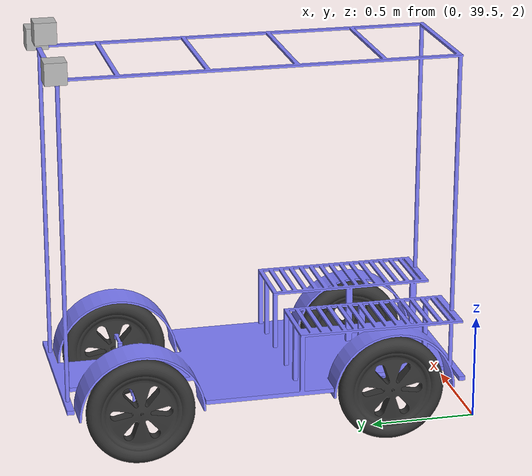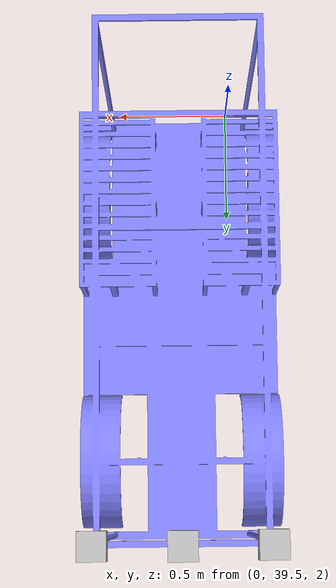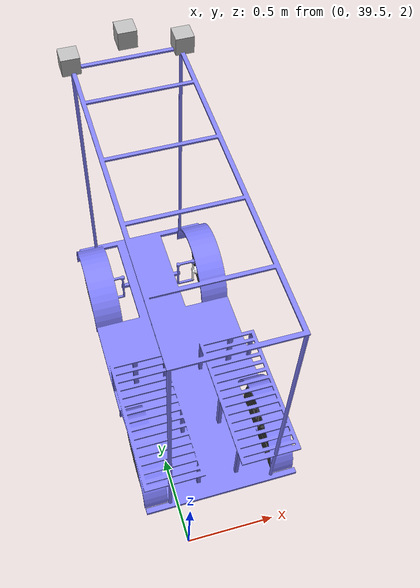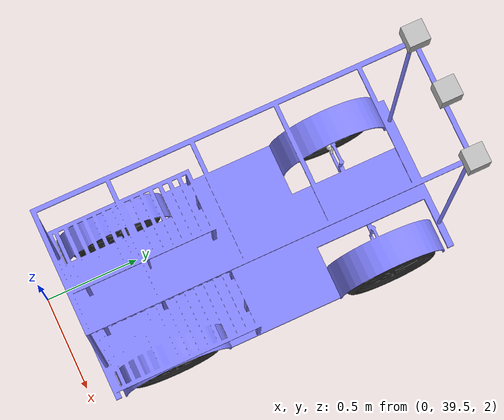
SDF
<sdf version="1.6">
 <world name="ackermann_steering">
  <physics name="1ms" type="ignored">
   <max_step_size>0.001</max_step_size>
   <real_time_factor>1.0</real_time_factor>
  </physics>
  <plugin filename="ignition-gazebo-physics-system" name="gz::sim::systems::Physics"/>
  <plugin filename="ignition-gazebo-sensors-system" name="gz::sim::systems::Sensors">
   <render_engine>ogre</render_engine>
  </plugin>
  <plugin filename="ignition-gazebo-air-pressure-system" name="gz::sim::systems::AirPressure"/>
  <plugin filename="ignition-gazebo-altimeter-system" name="gz::sim::systems::Altimeter"/>
  <plugin filename="ignition-gazebo-imu-system" name="gz::sim::systems::Imu"/>
  <plugin filename="ignition-gazebo-magnetometer-system" name="gz::sim::systems::Magnetometer"/>
  <plugin filename="ignition-gazebo-forcetorque-system" name="ignition::gazebo::systems::ForceTorque"/>
  <plugin filename="ignition-gazebo-user-commands-system" name="gz::sim::systems::UserCommands"/>
  <plugin filename="ignition-gazebo-scene-broadcaster-system" name="gz::sim::systems::SceneBroadcaster"/>
  <light type="directional" name="sun">
   <pose>0 0 5 0 0 0</pose>
   <diffuse>1 1 1 1</diffuse>
   <specular>0.5 0.5 0.5 1</specular>
   <attenuation>
    <range>1000</range>
    <constant>0.9</constant>
    <linear>0.01</linear>
    <quadratic>0.001</quadratic>
   </attenuation>
   <direction>-0.5 0.1 -0.9</direction>
  </light>
  <model name="automama">
   <pose>0 40 2 0 0 -1.57</pose>
   <link name="chassis">
    <inertial>
     <pose>-0.5 0.3 0.3 0 0 0</pose>
     <mass>300</mass>
     <inertia><ixx>0.5</ixx><ixy>0</ixy><ixz>0</ixz><iyy>0.5</iyy><iyz>0</iyz><izz>0.5</izz></inertia>
    </inertial>
    <visual name="visual">
     <geometry><mesh><scale>.01 .01 .01</scale><uri>base_link.stl</uri></mesh></geometry>
     <material>
      <ambient>0.5 0.5 1.0 1</ambient>
      <diffuse>0.5 0.5 1.0 1</diffuse>
      <specular>0.0 0.0 1.0 1</specular>
     </material>
    </visual>
    <collision name="collision">
     <geometry><mesh><scale>.01 .01 .01</scale><uri>base_link.stl</uri></mesh></geometry>
    </collision>
   </link>
   <link name="Camera1">
    <pose>-1.47 0.525 1.85 0 0 3.14</pose>
    <inertial>
     <mass>0.1</mass>
     <inertia><ixx>0.000166667</ixx><iyy>0.000166667</iyy><izz>0.000166667</izz></inertia>
    </inertial>
    <collision name="collision"><geometry><box><size>0.1 0.1 0.1</size></box></geometry></collision>
    <visual name="visual"><geometry><box><size>0.1 0.1 0.1</size></box></geometry></visual>
    <sensor name="camera1" type="camera">
     <camera>
      <horizontal_fov>1.047</horizontal_fov>
      <image><width>640</width><height>480</height></image>
      <clip><near>0.1</near><far>100</far></clip>
     </camera>
     <always_on>1</always_on>
     <update_rate>30</update_rate>
     <visualize>true</visualize>
     <topic>camera1</topic>
    </sensor>
   </link>
   <joint name="Camera1_joint" type="fixed">
    <parent>chassis</parent>
    <child>Camera1</child>
    <pose>-1.47 0.525 1.85 0 0 0</pose>
   </joint>
   <link name="Camera2">
    <pose>-1.47 -0.075 1.85 0 0 3.14</pose>
    <inertial>
     <mass>0.1</mass>
     <inertia><ixx>0.000166667</ixx><iyy>0.000166667</iyy><izz>0.000166667</izz></inertia>
    </inertial>
    <collision name="collision"><geometry><box><size>0.1 0.1 0.1</size></box></geometry></collision>
    <visual name="visual"><geometry><box><size>0.1 0.1 0.1</size></box></geometry></visual>
    <sensor name="camera2" type="camera">
     <camera>
      <horizontal_fov>1.047</horizontal_fov>
      <image><width>640</width><height>480</height></image>
      <clip><near>0.1</near><far>100</far></clip>
     </camera>
     <always_on>1</always_on>
     <update_rate>30</update_rate>
     <visualize>true</visualize>
     <topic>camera2</topic>
    </sensor>
   </link>
   <joint name="Camera2_joint" type="fixed">
    <parent>chassis</parent>
    <child>Camera2</child>
    <pose>-1.47 -0.075 1.85 0 0 0</pose>
   </joint>
   <link name="sensor_box">
    <pose>-1.47 0.225 1.95 0 0 0</pose>
    <inertial>
     <mass>0.1</mass>
     <inertia><ixx>0.000166667</ixx><iyy>0.000166667</iyy><izz>0.000166667</izz></inertia>
    </inertial>
    <collision name="sensor_box_collision"><geometry><box><size>0.1 0.1 0.1</size></box></geometry></collision>
    <visual name="sensor_box_visual"><geometry><box><size>0.1 0.1 0.1</size></box></geometry></visual>
    <sensor name="altimeter" type="altimeter">
     <always_on>1</always_on>
     <update_rate>30</update_rate>
     <visualize>true</visualize>
     <topic>altimeter</topic>
     <enable_metrics>true</enable_metrics>
     <altimeter>
      <vertical_position><noise type="gaussian"><mean>0.1</mean><stddev>0.2</stddev></noise></vertical_position>
      <vertical_velocity><noise type="gaussian"><mean>0.2</mean><stddev>0.1</stddev></noise></vertical_velocity>
     </altimeter>
    </sensor>
    <sensor name="air_pressure" type="air_pressure">
     <always_on>1</always_on>
     <update_rate>30</update_rate>
     <visualize>true</visualize>
     <topic>air_pressure</topic>
     <enable_metrics>true</enable_metrics>
     <air_pressure>
      <reference_altitude>123</reference_altitude>
      <pressure><noise type="gaussian"><mean>0.2</mean><stddev>0.1</stddev></noise></pressure>
     </air_pressure>
    </sensor>
    <sensor name="imu" type="imu">
     <always_on>1</always_on>
     <update_rate>100</update_rate>
     <visualize>true</visualize>
     <topic>imu</topic>
     <enable_metrics>true</enable_metrics>
    </sensor>
    <sensor name="magnetometer" type="magnetometer">
     <always_on>1</always_on>
     <update_rate>100</update_rate>
     <visualize>true</visualize>
     <topic>magnetometer</topic>
     <enable_metrics>true</enable_metrics>
     <magnetometer>
      <x><noise type="gaussian"><mean>0.0</mean><stddev>0.1</stddev></noise></x>
      <y><noise type="gaussian"><mean>0.0</mean><stddev>0.1</stddev></noise></y>
      <z><noise type="gaussian"><mean>0.0</mean><stddev>0.1</stddev></noise></z>
     </magnetometer>
    </sensor>
   </link>
   <joint name="sensor_box_joint" type="fixed">
    <parent>chassis</parent>
    <child>sensor_box</child>
    <pose>-1.47 0.225 1.95 0 0 0</pose>
   </joint>
   <link name="front_left_wheel">
    <inertial>
     <pose>-1.13 -0.15 0.25 0 0 0</pose>
     <mass>20</mass>
     <inertia><ixx>1</ixx><ixy>0</ixy><ixz>0</ixz><iyy>1</iyy><iyz>0</iyz><izz>1</izz></inertia>
    </inertial>
    <visual name="visual">
     <geometry><mesh><scale>.01 .01 .01</scale><uri>wheel1_1.stl</uri></mesh></geometry>
     <material>
      <ambient>0.2 0.2 0.2 1</ambient>
      <diffuse>0.2 0.2 0.2 1</diffuse>
      <specular>0.2 0.2 0.2 1</specular>
     </material>
    </visual>
    <collision name="collision">
     <geometry><mesh><scale>.01 .01 .01</scale><uri>wheel1_1.stl</uri></mesh></geometry>
     <surface><friction><ode><mu>0.5</mu><mu2>1.0</mu2><fdir1>0 0 1</fdir1></ode></friction></surface>
    </collision>
   </link>
   <link name="rear_left_wheel">
    <inertial>
     <pose>0.045 -0.15 .25 0 0 0</pose>
     <mass>20</mass>
     <inertia><ixx>1</ixx><ixy>0</ixy><ixz>0</ixz><iyy>1</iyy><iyz>0</iyz><izz>1</izz></inertia>
    </inertial>
    <visual name="visual">
     <geometry><mesh><scale>.01 .01 .01</scale><uri>wheel3_1.stl</uri></mesh></geometry>
     <material>
      <ambient>0.2 0.2 0.2 1</ambient>
      <diffuse>0.2 0.2 0.2 1</diffuse>
      <specular>0.2 0.2 0.2 1</specular>
     </material>
    </visual>
    <collision name="collision">
     <geometry><mesh><scale>.01 .01 .01</scale><uri>wheel3_1.stl</uri></mesh></geometry>
     <surface><friction><ode><mu>0.5</mu><mu2>1.0</mu2><fdir1>0 0 1</fdir1></ode></friction></surface>
    </collision>
   </link>
   <link name="front_right_wheel">
    <inertial>
     <pose>-1.13 0.6 0.25 0 0 0</pose>
     <mass>20</mass>
     <inertia><ixx>1</ixx><ixy>0</ixy><ixz>0</ixz><iyy>1</iyy><iyz>0</iyz><izz>1</izz></inertia>
    </inertial>
    <visual name="visual">
     <geometry><mesh><scale>.01 .01 .01</scale><uri>wheel2_1.stl</uri></mesh></geometry>
     <material>
      <ambient>0.2 0.2 0.2 1</ambient>
      <diffuse>0.2 0.2 0.2 1</diffuse>
      <specular>0.2 0.2 0.2 1</specular>
     </material>
    </visual>
    <collision name="collision">
     <geometry><mesh><scale>.01 .01 .01</scale><uri>wheel2_1.stl</uri></mesh></geometry>
     <surface><friction><ode><mu>0.5</mu><mu2>1.0</mu2><fdir1>0 0 1</fdir1></ode></friction></surface>
    </collision>
   </link>
   <link name="rear_right_wheel">
    <inertial>
     <pose>0.045 0.6 .25 0 0 0</pose>
     <mass>20</mass>
     <inertia><ixx>1</ixx><ixy>0</ixy><ixz>0</ixz><iyy>1</iyy><iyz>0</iyz><izz>1</izz></inertia>
    </inertial>
    <visual name="visual">
     <geometry><mesh><scale>.01 .01 .01</scale><uri>wheel4_1.stl</uri></mesh></geometry>
     <material>
      <ambient>0.2 0.2 0.2 1</ambient>
      <diffuse>0.2 0.2 0.2 1</diffuse>
      <specular>0.2 0.2 0.2 1</specular>
     </material>
    </visual>
    <collision name="collision">
     <geometry><mesh><scale>.01 .01 .01</scale><uri>wheel4_1.stl</uri></mesh></geometry>
     <surface><friction><ode><mu>0.5</mu><mu2>1.0</mu2><fdir1>0 0 1</fdir1></ode></friction></surface>
    </collision>
   </link>
   <link name="front_left_wheel_steering_link">
    <inertial>
     <pose>-1.135 -0.065 0.25 0 0 0</pose>
     <mass>5</mass>
     <inertia><ixx>1</ixx><iyy>1</iyy><izz>1</izz></inertia>
    </inertial>
    <visual name="steering_link_visual">
     <geometry><mesh><scale>.01 .01 .01</scale><uri>wheel1_link_1.stl</uri></mesh></geometry>
     <material><ambient>1 1 1</ambient><diffuse>1 1 1</diffuse></material>
    </visual>
   </link>
   <link name="front_right_wheel_steering_link">
    <inertial>
     <pose>-1.135 0.51 0.25 0 0 0</pose>
     <mass>5</mass>
     <inertia><ixx>1</ixx><iyy>1</iyy><izz>1</izz></inertia>
    </inertial>
    <visual name="steering_link_visual">
     <geometry><mesh><scale>.01 .01 .01</scale><uri>wheel2_link_1.stl</uri></mesh></geometry>
     <material><ambient>1 1 1</ambient><diffuse>1 1 1</diffuse></material>
    </visual>
   </link>
   <joint name="front_left_wheel_steering_joint" type="revolute">
    <pose>-1.135 -0.065 0.25 0 0 0</pose>
    <child>front_left_wheel_steering_link</child>
    <parent>chassis</parent>
    <axis>
     <xyz>0 0 1</xyz>
     <limit><lower>-0.6</lower><upper>+0.6</upper><velocity>1.0</velocity><effort>25</effort></limit>
    </axis>
   </joint>
   <joint name="front_right_wheel_steering_joint" type="revolute">
    <pose>-1.135 0.51 0.25 0 0 0</pose>
    <parent>chassis</parent>
    <child>front_right_wheel_steering_link</child>
    <axis>
     <xyz>0 0 1</xyz>
     <limit><lower>-0.6</lower><upper>+0.6</upper><velocity>1.0</velocity><effort>25</effort></limit>
    </axis>
   </joint>
   <joint name="front_left_wheel_joint" type="revolute">
    <pose>-1.13 -0.15 0.25 0 0 0</pose>
    <parent>front_left_wheel_steering_link</parent>
    <child>front_left_wheel</child>
    <axis><xyz>0 1 0</xyz><limit><lower>-1.79769e+308</lower><upper>1.79769e+308</upper></limit></axis>
   </joint>
   <joint name="front_right_wheel_joint" type="revolute">
    <pose>-1.13 0.6 0.25 0 0 0</pose>
    <parent>front_right_wheel_steering_link</parent>
    <child>front_right_wheel</child>
    <axis><xyz>0 1 0</xyz><limit><lower>-1.79769e+308</lower><upper>1.79769e+308</upper></limit></axis>
   </joint>
   <joint name="rear_left_wheel_joint" type="revolute">
    <pose>0.045 -0.15 .25 0 0 0</pose>
    <parent>chassis</parent>
    <child>rear_left_wheel</child>
    <axis><xyz>0 1 0</xyz><limit><lower>-1.79769e+308</lower><upper>1.79769e+308</upper></limit></axis>
   </joint>
   <joint name="rear_right_wheel_joint" type="revolute">
    <pose>0.045 0.6 .25 0 0 0</pose>
    <parent>chassis</parent>
    <child>rear_right_wheel</child>
    <axis><xyz>0 1 0</xyz><limit><lower>-1.79769e+308</lower><upper>1.79769e+308</upper></limit></axis>
   </joint>
   <plugin filename="ignition-gazebo-ackermann-steering-system" name="gz::sim::systems::AckermannSteering">
    <left_joint>front_left_wheel_joint</left_joint>
    <left_joint>rear_left_wheel_joint</left_joint>
    <right_joint>front_right_wheel_joint</right_joint>
    <right_joint>rear_right_wheel_joint</right_joint>
    <left_steering_joint>front_left_wheel_steering_joint</left_steering_joint>
    <right_steering_joint>front_right_wheel_steering_joint</right_steering_joint>
    <kingpin_width>0.215</kingpin_width>
    <steering_limit>0.6</steering_limit>
    <wheel_base>1.175</wheel_base>
    <wheel_separation>0.75</wheel_separation>
    <wheel_radius>0.3</wheel_radius>
    <min_velocity>-5</min_velocity>
    <max_velocity>22</max_velocity>
    <min_acceleration>-3</min_acceleration>
    <max_acceleration>3</max_acceleration>
   </plugin>
  </model>
 </world>
</sdf>
